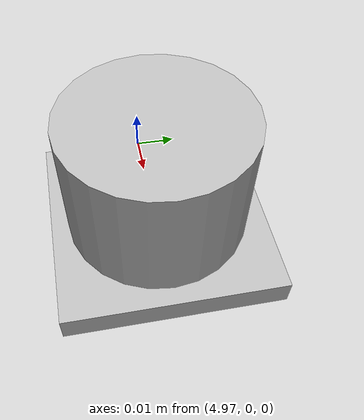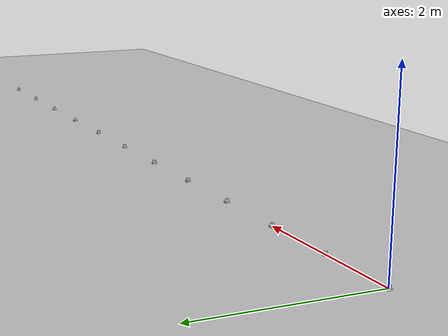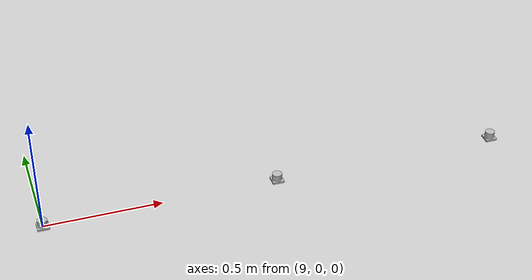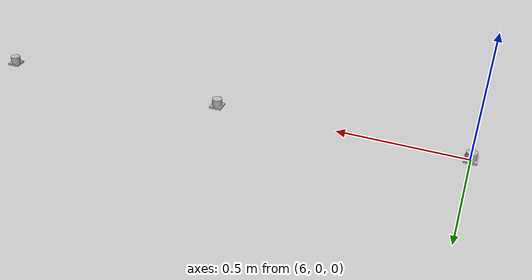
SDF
<sdf version="1.7">
 <world name="default">
  <plugin name="disable_physics" filename="libcustom_gazebo_disable_physics.so"/>
  <light name="sun" type="directional">
   <pose>0 0 10 0 -0 0</pose>
   <diffuse>0.8 0.8 0.8 1</diffuse>
   <specular>0.1 0.1 0.1 1</specular>
   <attenuation>
    <range>1000</range>
    <constant>0.9</constant>
    <linear>0.01</linear>
    <quadratic>0.001</quadratic>
   </attenuation>
   <direction>-0.5 0.5 -1</direction>
   <spot><inner_angle>0</inner_angle><outer_angle>0</outer_angle><falloff>0</falloff></spot>
  </light>
  <model name="ground_plane">
   <static>1</static>
   <link name="link">
    <collision name="collision">
     <geometry><plane><normal>0 0 1</normal><size>100 100</size></plane></geometry>
     <surface><friction><ode><mu>100</mu><mu2>50</mu2></ode></friction></surface>
    </collision>
    <visual name="visual">
     <cast_shadows>0</cast_shadows>
     <geometry><plane><normal>0 0 1</normal><size>100 100</size></plane></geometry>
     <material>
      <script><uri>file://media/materials/scripts/gazebo.material</uri><name>Gazebo/Grey</name></script>
     </material>
    </visual>
   </link>
  </model>
  <physics name="default_physics" default="0" type="ode">
   <max_step_size>0.01</max_step_size>
   <real_time_factor>1</real_time_factor>
   <real_time_update_rate>100</real_time_update_rate>
  </physics>
  <plugin name="disable_physics" filename="libcustom_gazebo_disable_physics.so"/>
  <scene><ambient>0.4 0.4 0.4 1</ambient><background>0.7 0.7 0.7 1</background><shadows>1</shadows></scene>
  <model name="lidar0">
   <link name="link">
    <inertial>
     <mass>0.1</mass>
     <inertia><ixx>1</ixx><ixy>0</ixy><ixz>0</ixz><iyy>1</iyy><iyz>0</iyz><izz>1</izz></inertia>
    </inertial>
    <visual name="visual-base">
     <pose>0 0 -0.0145 0 -0 0</pose>
     <geometry><box><size>0.05 0.05 0.041</size></box></geometry>
    </visual>
    <visual name="visual-top">
     <pose>0 0 0.0205 0 -0 0</pose>
     <geometry><cylinder><radius>0.021</radius><length>0.029</length></cylinder></geometry>
    </visual>
    <collision name="collision-base">
     <pose>0 0 -0.0145 0 -0 0</pose>
     <geometry><box><size>0.05 0.05 0.041</size></box></geometry>
    </collision>
    <collision name="collision-top">
     <pose>0 0 0.0205 0 -0 0</pose>
     <geometry><cylinder><radius>0.021</radius><length>0.029</length></cylinder></geometry>
    </collision>
    <sensor name="laser" type="gpu_ray">
     <plugin name="gazebo_ros_1_controller" filename="libgazebo_ros_gpu_laser.so">
      <robotNamespace>/</robotNamespace>
      <topicName>laser1</topicName>
      <frameName>laser</frameName>
     </plugin>
     <pose>0.01 0 0.0175 0 -0 0</pose>
     <ray>
      <scan>
       <horizontal>
        <samples>1072</samples>
        <resolution>1</resolution>
        <min_angle>-2.26889</min_angle>
        <max_angle>2.2689</max_angle>
       </horizontal>
      </scan>
      <range><min>0.08</min><max>30</max><resolution>0.01</resolution></range>
     </ray>
     <always_on>1</always_on>
     <update_rate>34</update_rate>
     <visualize>1</visualize>
    </sensor>
   </link>
  </model>
  <model name="lidar1">
   <pose>1 0 0 0 -0 0</pose>
   <link name="link">
    <inertial>
     <mass>0.1</mass>
     <inertia><ixx>1</ixx><ixy>0</ixy><ixz>0</ixz><iyy>1</iyy><iyz>0</iyz><izz>1</izz></inertia>
    </inertial>
    <visual name="visual-base">
     <pose>0 0 -0.0145 0 -0 0</pose>
     <geometry><box><size>0.05 0.05 0.041</size></box></geometry>
    </visual>
    <visual name="visual-top">
     <pose>0 0 0.0205 0 -0 0</pose>
     <geometry><cylinder><radius>0.021</radius><length>0.029</length></cylinder></geometry>
    </visual>
    <collision name="collision-base">
     <pose>0 0 -0.0145 0 -0 0</pose>
     <geometry><box><size>0.05 0.05 0.041</size></box></geometry>
    </collision>
    <collision name="collision-top">
     <pose>0 0 0.0205 0 -0 0</pose>
     <geometry><cylinder><radius>0.021</radius><length>0.029</length></cylinder></geometry>
    </collision>
    <sensor name="laser" type="gpu_ray">
     <plugin name="gazebo_ros_2_controller" filename="libgazebo_ros_gpu_laser.so">
      <robotNamespace>/</robotNamespace>
      <topicName>laser2</topicName>
      <frameName>laser</frameName>
     </plugin>
     <pose>0.01 0 0.0175 0 -0 0</pose>
     <ray>
      <scan>
       <horizontal>
        <samples>1072</samples>
        <resolution>1</resolution>
        <min_angle>-2.26889</min_angle>
        <max_angle>2.2689</max_angle>
       </horizontal>
      </scan>
      <range><min>0.08</min><max>30</max><resolution>0.01</resolution></range>
     </ray>
     <always_on>1</always_on>
     <update_rate>34</update_rate>
     <visualize>1</visualize>
    </sensor>
   </link>
  </model>
  <model name="lidar2">
   <pose>2 0 0 0 -0 0</pose>
   <link name="link">
    <inertial>
     <mass>0.1</mass>
     <inertia><ixx>1</ixx><ixy>0</ixy><ixz>0</ixz><iyy>1</iyy><iyz>0</iyz><izz>1</izz></inertia>
    </inertial>
    <visual name="visual-base">
     <pose>0 0 -0.0145 0 -0 0</pose>
     <geometry><box><size>0.05 0.05 0.041</size></box></geometry>
    </visual>
    <visual name="visual-top">
     <pose>0 0 0.0205 0 -0 0</pose>
     <geometry><cylinder><radius>0.021</radius><length>0.029</length></cylinder></geometry>
    </visual>
    <collision name="collision-base">
     <pose>0 0 -0.0145 0 -0 0</pose>
     <geometry><box><size>0.05 0.05 0.041</size></box></geometry>
    </collision>
    <collision name="collision-top">
     <pose>0 0 0.0205 0 -0 0</pose>
     <geometry><cylinder><radius>0.021</radius><length>0.029</length></cylinder></geometry>
    </collision>
    <sensor name="laser" type="gpu_ray">
     <plugin name="gazebo_ros_0_controller" filename="libgazebo_ros_gpu_laser.so">
      <robotNamespace>/</robotNamespace>
      <topicName>laser0</topicName>
      <frameName>laser</frameName>
     </plugin>
     <pose>0.01 0 0.0175 0 -0 0</pose>
     <ray>
      <scan>
       <horizontal>
        <samples>1072</samples>
        <resolution>1</resolution>
        <min_angle>-2.26889</min_angle>
        <max_angle>2.2689</max_angle>
       </horizontal>
      </scan>
      <range><min>0.08</min><max>30</max><resolution>0.01</resolution></range>
     </ray>
     <always_on>1</always_on>
     <update_rate>34</update_rate>
     <visualize>1</visualize>
    </sensor>
   </link>
  </model>
  <model name="lidar3">
   <pose>3 0 0 0 -0 0</pose>
   <link name="link">
    <inertial>
     <mass>0.1</mass>
     <inertia><ixx>1</ixx><ixy>0</ixy><ixz>0</ixz><iyy>1</iyy><iyz>0</iyz><izz>1</izz></inertia>
    </inertial>
    <visual name="visual-base">
     <pose>0 0 -0.0145 0 -0 0</pose>
     <geometry><box><size>0.05 0.05 0.041</size></box></geometry>
    </visual>
    <visual name="visual-top">
     <pose>0 0 0.0205 0 -0 0</pose>
     <geometry><cylinder><radius>0.021</radius><length>0.029</length></cylinder></geometry>
    </visual>
    <collision name="collision-base">
     <pose>0 0 -0.0145 0 -0 0</pose>
     <geometry><box><size>0.05 0.05 0.041</size></box></geometry>
    </collision>
    <collision name="collision-top">
     <pose>0 0 0.0205 0 -0 0</pose>
     <geometry><cylinder><radius>0.021</radius><length>0.029</length></cylinder></geometry>
    </collision>
    <sensor name="laser" type="gpu_ray">
     <plugin name="gazebo_ros_3_controller" filename="libgazebo_ros_gpu_laser.so">
      <robotNamespace>/</robotNamespace>
      <topicName>laser3</topicName>
      <frameName>laser</frameName>
     </plugin>
     <pose>0.01 0 0.0175 0 -0 0</pose>
     <ray>
      <scan>
       <horizontal>
        <samples>1072</samples>
        <resolution>1</resolution>
        <min_angle>-2.26889</min_angle>
        <max_angle>2.2689</max_angle>
       </horizontal>
      </scan>
      <range><min>0.08</min><max>30</max><resolution>0.01</resolution></range>
     </ray>
     <always_on>1</always_on>
     <update_rate>34</update_rate>
     <visualize>1</visualize>
    </sensor>
   </link>
  </model>
  <model name="lidar4">
   <pose>4 0 0 0 -0 0</pose>
   <link name="link">
    <inertial>
     <mass>0.1</mass>
     <inertia><ixx>1</ixx><ixy>0</ixy><ixz>0</ixz><iyy>1</iyy><iyz>0</iyz><izz>1</izz></inertia>
    </inertial>
    <visual name="visual-base">
     <pose>0 0 -0.0145 0 -0 0</pose>
     <geometry><box><size>0.05 0.05 0.041</size></box></geometry>
    </visual>
    <visual name="visual-top">
     <pose>0 0 0.0205 0 -0 0</pose>
     <geometry><cylinder><radius>0.021</radius><length>0.029</length></cylinder></geometry>
    </visual>
    <collision name="collision-base">
     <pose>0 0 -0.0145 0 -0 0</pose>
     <geometry><box><size>0.05 0.05 0.041</size></box></geometry>
    </collision>
    <collision name="collision-top">
     <pose>0 0 0.0205 0 -0 0</pose>
     <geometry><cylinder><radius>0.021</radius><length>0.029</length></cylinder></geometry>
    </collision>
    <sensor name="laser" type="gpu_ray">
     <plugin name="gazebo_ros_4_controller" filename="libgazebo_ros_gpu_laser.so">
      <robotNamespace>/</robotNamespace>
      <topicName>laser4</topicName>
      <frameName>laser</frameName>
     </plugin>
     <pose>0.01 0 0.0175 0 -0 0</pose>
     <ray>
      <scan>
       <horizontal>
        <samples>1072</samples>
        <resolution>1</resolution>
        <min_angle>-2.26889</min_angle>
        <max_angle>2.2689</max_angle>
       </horizontal>
      </scan>
      <range><min>0.08</min><max>30</max><resolution>0.01</resolution></range>
     </ray>
     <always_on>1</always_on>
     <update_rate>34</update_rate>
     <visualize>1</visualize>
    </sensor>
   </link>
  </model>
  <model name="lidar5">
   <pose>5 0 0 0 -0 0</pose>
   <link name="link">
    <inertial>
     <mass>0.1</mass>
     <inertia><ixx>1</ixx><ixy>0</ixy><ixz>0</ixz><iyy>1</iyy><iyz>0</iyz><izz>1</izz></inertia>
    </inertial>
    <visual name="visual-base">
     <pose>0 0 -0.0145 0 -0 0</pose>
     <geometry><box><size>0.05 0.05 0.041</size></box></geometry>
    </visual>
    <visual name="visual-top">
     <pose>0 0 0.0205 0 -0 0</pose>
     <geometry><cylinder><radius>0.021</radius><length>0.029</length></cylinder></geometry>
    </visual>
    <collision name="collision-base">
     <pose>0 0 -0.0145 0 -0 0</pose>
     <geometry><box><size>0.05 0.05 0.041</size></box></geometry>
    </collision>
    <collision name="collision-top">
     <pose>0 0 0.0205 0 -0 0</pose>
     <geometry><cylinder><radius>0.021</radius><length>0.029</length></cylinder></geometry>
    </collision>
    <sensor name="laser" type="gpu_ray">
     <plugin name="gazebo_ros_5_controller" filename="libgazebo_ros_gpu_laser.so">
      <robotNamespace>/</robotNamespace>
      <topicName>laser5</topicName>
      <frameName>laser</frameName>
     </plugin>
     <pose>0.01 0 0.0175 0 -0 0</pose>
     <ray>
      <scan>
       <horizontal>
        <samples>1072</samples>
        <resolution>1</resolution>
        <min_angle>-2.26889</min_angle>
        <max_angle>2.2689</max_angle>
       </horizontal>
      </scan>
      <range><min>0.08</min><max>30</max><resolution>0.01</resolution></range>
     </ray>
     <always_on>1</always_on>
     <update_rate>34</update_rate>
     <visualize>1</visualize>
    </sensor>
   </link>
  </model>
  <model name="lidar6">
   <pose>6 0 0 0 -0 0</pose>
   <link name="link">
    <inertial>
     <mass>0.1</mass>
     <inertia><ixx>1</ixx><ixy>0</ixy><ixz>0</ixz><iyy>1</iyy><iyz>0</iyz><izz>1</izz></inertia>
    </inertial>
    <visual name="visual-base">
     <pose>0 0 -0.0145 0 -0 0</pose>
     <geometry><box><size>0.05 0.05 0.041</size></box></geometry>
    </visual>
    <visual name="visual-top">
     <pose>0 0 0.0205 0 -0 0</pose>
     <geometry><cylinder><radius>0.021</radius><length>0.029</length></cylinder></geometry>
    </visual>
    <collision name="collision-base">
     <pose>0 0 -0.0145 0 -0 0</pose>
     <geometry><box><size>0.05 0.05 0.041</size></box></geometry>
    </collision>
    <collision name="collision-top">
     <pose>0 0 0.0205 0 -0 0</pose>
     <geometry><cylinder><radius>0.021</radius><length>0.029</length></cylinder></geometry>
    </collision>
    <sensor name="laser" type="gpu_ray">
     <plugin name="gazebo_ros_6_controller" filename="libgazebo_ros_gpu_laser.so">
      <robotNamespace>/</robotNamespace>
      <topicName>laser6</topicName>
      <frameName>laser</frameName>
     </plugin>
     <pose>0.01 0 0.0175 0 -0 0</pose>
     <ray>
      <scan>
       <horizontal>
        <samples>1072</samples>
        <resolution>1</resolution>
        <min_angle>-2.26889</min_angle>
        <max_angle>2.2689</max_angle>
       </horizontal>
      </scan>
      <range><min>0.08</min><max>30</max><resolution>0.01</resolution></range>
     </ray>
     <always_on>1</always_on>
     <update_rate>34</update_rate>
     <visualize>1</visualize>
    </sensor>
   </link>
  </model>
  <model name="lidar7">
   <pose>7 0 0 0 -0 0</pose>
   <link name="link">
    <inertial>
     <mass>0.1</mass>
     <inertia><ixx>1</ixx><ixy>0</ixy><ixz>0</ixz><iyy>1</iyy><iyz>0</iyz><izz>1</izz></inertia>
    </inertial>
    <visual name="visual-base">
     <pose>0 0 -0.0145 0 -0 0</pose>
     <geometry><box><size>0.05 0.05 0.041</size></box></geometry>
    </visual>
    <visual name="visual-top">
     <pose>0 0 0.0205 0 -0 0</pose>
     <geometry><cylinder><radius>0.021</radius><length>0.029</length></cylinder></geometry>
    </visual>
    <collision name="collision-base">
     <pose>0 0 -0.0145 0 -0 0</pose>
     <geometry><box><size>0.05 0.05 0.041</size></box></geometry>
    </collision>
    <collision name="collision-top">
     <pose>0 0 0.0205 0 -0 0</pose>
     <geometry><cylinder><radius>0.021</radius><length>0.029</length></cylinder></geometry>
    </collision>
    <sensor name="laser" type="gpu_ray">
     <plugin name="gazebo_ros_7_controller" filename="libgazebo_ros_gpu_laser.so">
      <robotNamespace>/</robotNamespace>
      <topicName>laser7</topicName>
      <frameName>laser</frameName>
     </plugin>
     <pose>0.01 0 0.0175 0 -0 0</pose>
     <ray>
      <scan>
       <horizontal>
        <samples>1072</samples>
        <resolution>1</resolution>
        <min_angle>-2.26889</min_angle>
        <max_angle>2.2689</max_angle>
       </horizontal>
      </scan>
      <range><min>0.08</min><max>30</max><resolution>0.01</resolution></range>
     </ray>
     <always_on>1</always_on>
     <update_rate>34</update_rate>
     <visualize>1</visualize>
    </sensor>
   </link>
  </model>
  <model name="lidar8">
   <pose>8 0 0 0 -0 0</pose>
   <link name="link">
    <inertial>
     <mass>0.1</mass>
     <inertia><ixx>1</ixx><ixy>0</ixy><ixz>0</ixz><iyy>1</iyy><iyz>0</iyz><izz>1</izz></inertia>
    </inertial>
    <visual name="visual-base">
     <pose>0 0 -0.0145 0 -0 0</pose>
     <geometry><box><size>0.05 0.05 0.041</size></box></geometry>
    </visual>
    <visual name="visual-top">
     <pose>0 0 0.0205 0 -0 0</pose>
     <geometry><cylinder><radius>0.021</radius><length>0.029</length></cylinder></geometry>
    </visual>
    <collision name="collision-base">
     <pose>0 0 -0.0145 0 -0 0</pose>
     <geometry><box><size>0.05 0.05 0.041</size></box></geometry>
    </collision>
    <collision name="collision-top">
     <pose>0 0 0.0205 0 -0 0</pose>
     <geometry><cylinder><radius>0.021</radius><length>0.029</length></cylinder></geometry>
    </collision>
    <sensor name="laser" type="gpu_ray">
     <plugin name="gazebo_ros_8_controller" filename="libgazebo_ros_gpu_laser.so">
      <robotNamespace>/</robotNamespace>
      <topicName>laser8</topicName>
      <frameName>laser</frameName>
     </plugin>
     <pose>0.01 0 0.0175 0 -0 0</pose>
     <ray>
      <scan>
       <horizontal>
        <samples>1072</samples>
        <resolution>1</resolution>
        <min_angle>-2.26889</min_angle>
        <max_angle>2.2689</max_angle>
       </horizontal>
      </scan>
      <range><min>0.08</min><max>30</max><resolution>0.01</resolution></range>
     </ray>
     <always_on>1</always_on>
     <update_rate>34</update_rate>
     <visualize>1</visualize>
    </sensor>
   </link>
  </model>
  <model name="lidar9">
   <pose>9 0 0 0 -0 0</pose>
   <link name="link">
    <inertial>
     <mass>0.1</mass>
     <inertia><ixx>1</ixx><ixy>0</ixy><ixz>0</ixz><iyy>1</iyy><iyz>0</iyz><izz>1</izz></inertia>
    </inertial>
    <visual name="visual-base">
     <pose>0 0 -0.0145 0 -0 0</pose>
     <geometry><box><size>0.05 0.05 0.041</size></box></geometry>
    </visual>
    <visual name="visual-top">
     <pose>0 0 0.0205 0 -0 0</pose>
     <geometry><cylinder><radius>0.021</radius><length>0.029</length></cylinder></geometry>
    </visual>
    <collision name="collision-base">
     <pose>0 0 -0.0145 0 -0 0</pose>
     <geometry><box><size>0.05 0.05 0.041</size></box></geometry>
    </collision>
    <collision name="collision-top">
     <pose>0 0 0.0205 0 -0 0</pose>
     <geometry><cylinder><radius>0.021</radius><length>0.029</length></cylinder></geometry>
    </collision>
    <sensor name="laser" type="gpu_ray">
     <plugin name="gazebo_ros_9_controller" filename="libgazebo_ros_gpu_laser.so">
      <robotNamespace>/</robotNamespace>
      <topicName>laser9</topicName>
      <frameName>laser</frameName>
     </plugin>
     <pose>0.01 0 0.0175 0 -0 0</pose>
     <ray>
      <scan>
       <horizontal>
        <samples>1072</samples>
        <resolution>1</resolution>
        <min_angle>-2.26889</min_angle>
        <max_angle>2.2689</max_angle>
       </horizontal>
      </scan>
      <range><min>0.08</min><max>30</max><resolution>0.01</resolution></range>
     </ray>
     <always_on>1</always_on>
     <update_rate>34</update_rate>
     <visualize>1</visualize>
    </sensor>
   </link>
  </model>
  <model name="lidar10">
   <pose>10 0 0 0 -0 0</pose>
   <link name="link">
    <inertial>
     <mass>0.1</mass>
     <inertia><ixx>1</ixx><ixy>0</ixy><ixz>0</ixz><iyy>1</iyy><iyz>0</iyz><izz>1</izz></inertia>
    </inertial>
    <visual name="visual-base">
     <pose>0 0 -0.0145 0 -0 0</pose>
     <geometry><box><size>0.05 0.05 0.041</size></box></geometry>
    </visual>
    <visual name="visual-top">
     <pose>0 0 0.0205 0 -0 0</pose>
     <geometry><cylinder><radius>0.021</radius><length>0.029</length></cylinder></geometry>
    </visual>
    <collision name="collision-base">
     <pose>0 0 -0.0145 0 -0 0</pose>
     <geometry><box><size>0.05 0.05 0.041</size></box></geometry>
    </collision>
    <collision name="collision-top">
     <pose>0 0 0.0205 0 -0 0</pose>
     <geometry><cylinder><radius>0.021</radius><length>0.029</length></cylinder></geometry>
    </collision>
    <sensor name="laser" type="gpu_ray">
     <plugin name="gazebo_ros_10_controller" filename="libgazebo_ros_gpu_laser.so">
      <robotNamespace>/</robotNamespace>
      <topicName>laser10</topicName>
      <frameName>laser</frameName>
     </plugin>
     <pose>0.01 0 0.0175 0 -0 0</pose>
     <ray>
      <scan>
       <horizontal>
        <samples>1072</samples>
        <resolution>1</resolution>
        <min_angle>-2.26889</min_angle>
        <max_angle>2.2689</max_angle>
       </horizontal>
      </scan>
      <range><min>0.08</min><max>30</max><resolution>0.01</resolution></range>
     </ray>
     <always_on>1</always_on>
     <update_rate>34</update_rate>
     <visualize>1</visualize>
    </sensor>
   </link>
  </model>
  <model name="lidar11">
   <pose>11 0 0 0 -0 0</pose>
   <link name="link">
    <inertial>
     <mass>0.1</mass>
     <inertia><ixx>1</ixx><ixy>0</ixy><ixz>0</ixz><iyy>1</iyy><iyz>0</iyz><izz>1</izz></inertia>
    </inertial>
    <visual name="visual-base">
     <pose>0 0 -0.0145 0 -0 0</pose>
     <geometry><box><size>0.05 0.05 0.041</size></box></geometry>
    </visual>
    <visual name="visual-top">
     <pose>0 0 0.0205 0 -0 0</pose>
     <geometry><cylinder><radius>0.021</radius><length>0.029</length></cylinder></geometry>
    </visual>
    <collision name="collision-base">
     <pose>0 0 -0.0145 0 -0 0</pose>
     <geometry><box><size>0.05 0.05 0.041</size></box></geometry>
    </collision>
    <collision name="collision-top">
     <pose>0 0 0.0205 0 -0 0</pose>
     <geometry><cylinder><radius>0.021</radius><length>0.029</length></cylinder></geometry>
    </collision>
    <sensor name="laser" type="gpu_ray">
     <plugin name="gazebo_ros_11_controller" filename="libgazebo_ros_gpu_laser.so">
      <robotNamespace>/</robotNamespace>
      <topicName>laser11</topicName>
      <frameName>laser</frameName>
     </plugin>
     <pose>0.01 0 0.0175 0 -0 0</pose>
     <ray>
      <scan>
       <horizontal>
        <samples>1072</samples>
        <resolution>1</resolution>
        <min_angle>-2.26889</min_angle>
        <max_angle>2.2689</max_angle>
       </horizontal>
      </scan>
      <range><min>0.08</min><max>30</max><resolution>0.01</resolution></range>
     </ray>
     <always_on>1</always_on>
     <update_rate>34</update_rate>
     <visualize>1</visualize>
    </sensor>
   </link>
  </model>
  <gravity>0 0 -9.8</gravity>
  <magnetic_field>6e-06 2.3e-05 -4.2e-05</magnetic_field>
  <atmosphere type="adiabatic"/>
  <spherical_coordinates>
   <surface_model>EARTH_WGS84</surface_model>
   <latitude_deg>0</latitude_deg>
   <longitude_deg>0</longitude_deg>
   <elevation>0</elevation>
   <heading_deg>0</heading_deg>
  </spherical_coordinates>
 </world>
</sdf>
